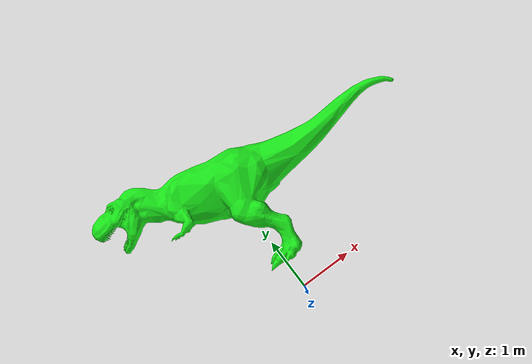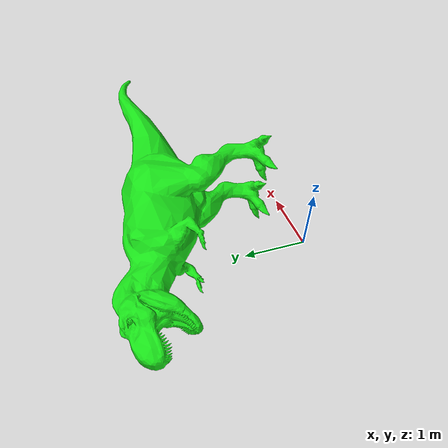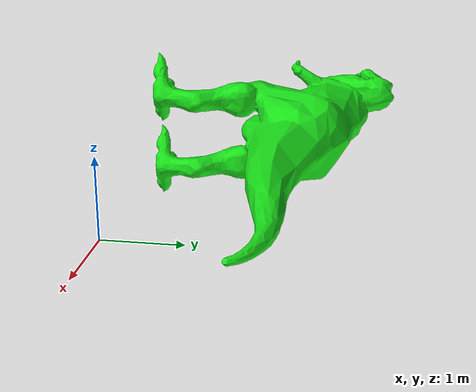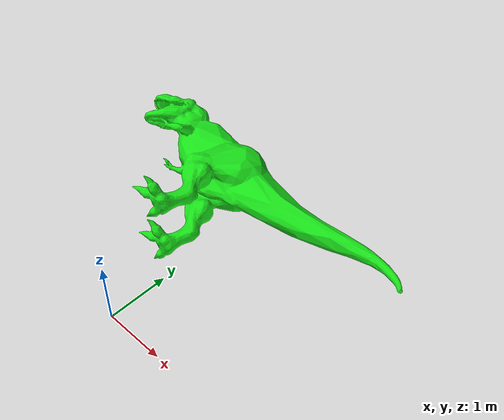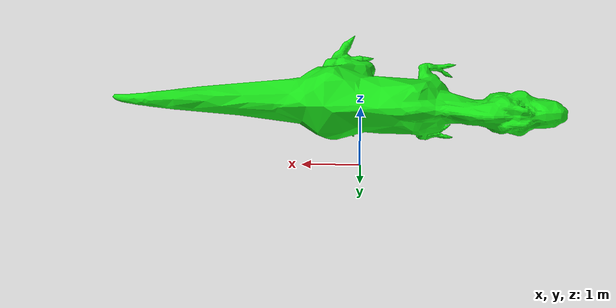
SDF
<?xml version='1.6'?>
<sdf version='1.6'>
  <model name='party_dino'>
    <static>false</static>
    <link name='body'>
      <pose>0 0 0 0 0 0</pose>
      <collision name='collision'>
        <geometry>
          <box><size>0.2 0.1 0.2</size></box>
        </geometry>
        <pose>0 0 0.1 0 0 0</pose>
      </collision>
      <visual name='mesh_visual'>
        <geometry>
          <mesh>
            <uri>model://party_dino/meshes/party_dino.obj</uri>
            <scale>0.01 0.01 0.01</scale>
          </mesh>
        </geometry>
        <material>
          <ambient>0.1 0.9 0.1 1</ambient>
          <diffuse>0.1 0.9 0.1 1</diffuse>
        </material>
      </visual>
    </link>
  </model>
</sdf>
